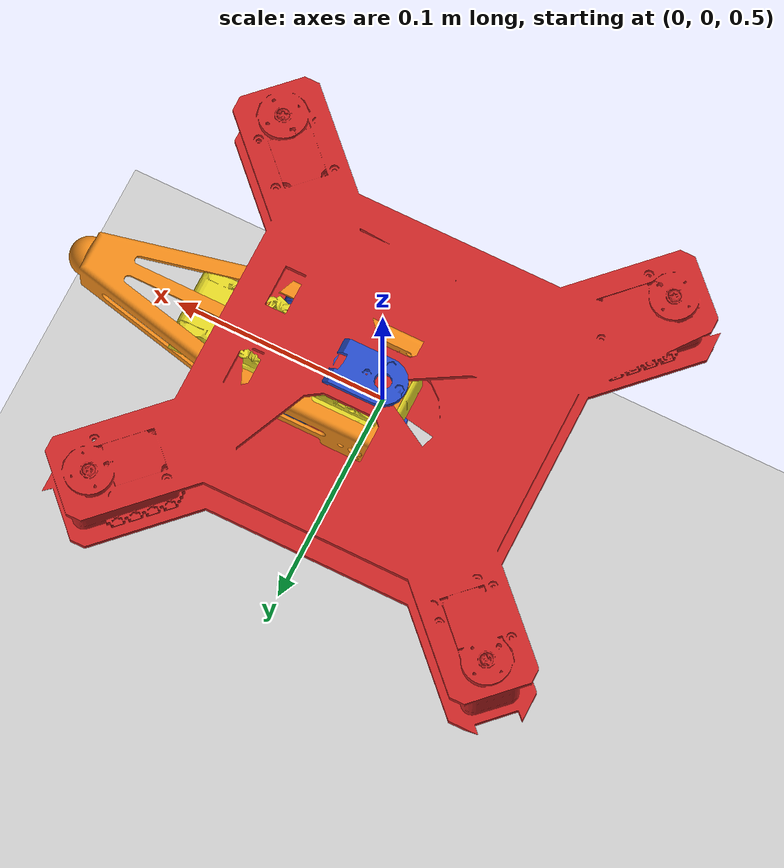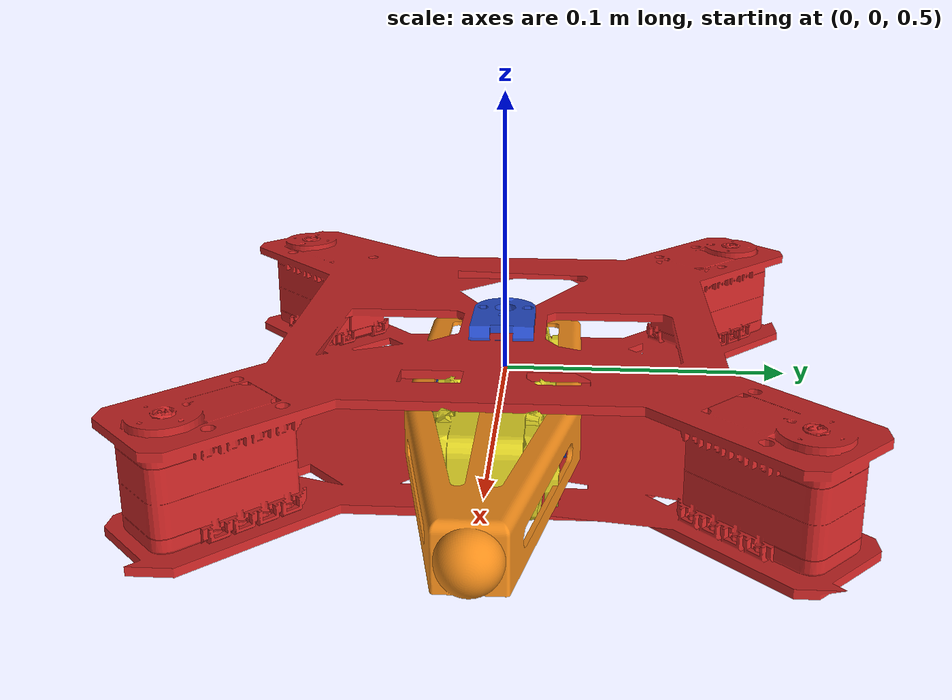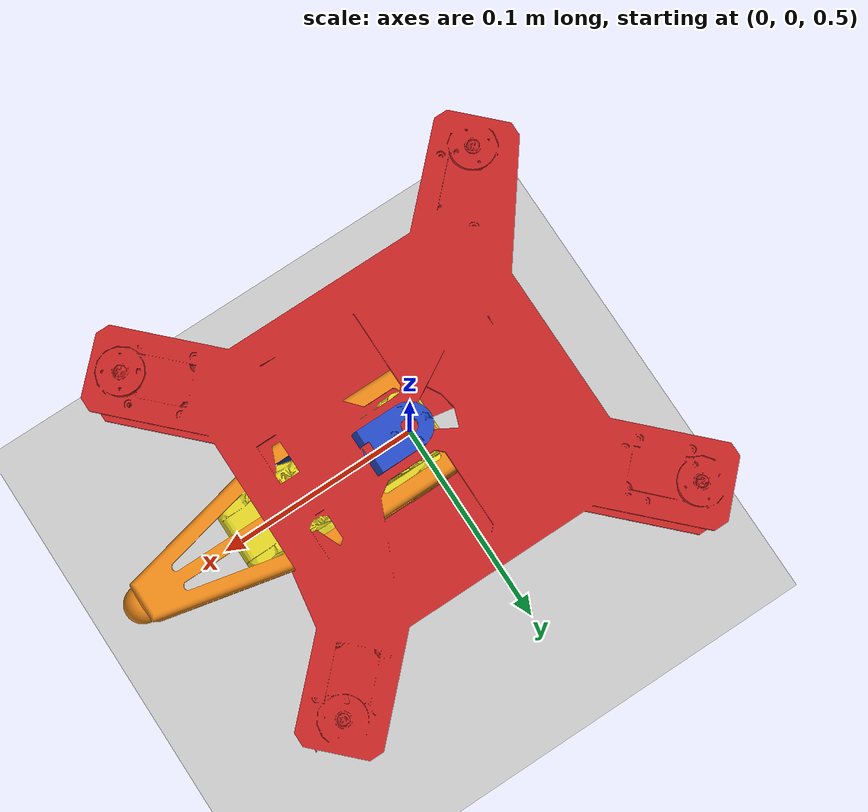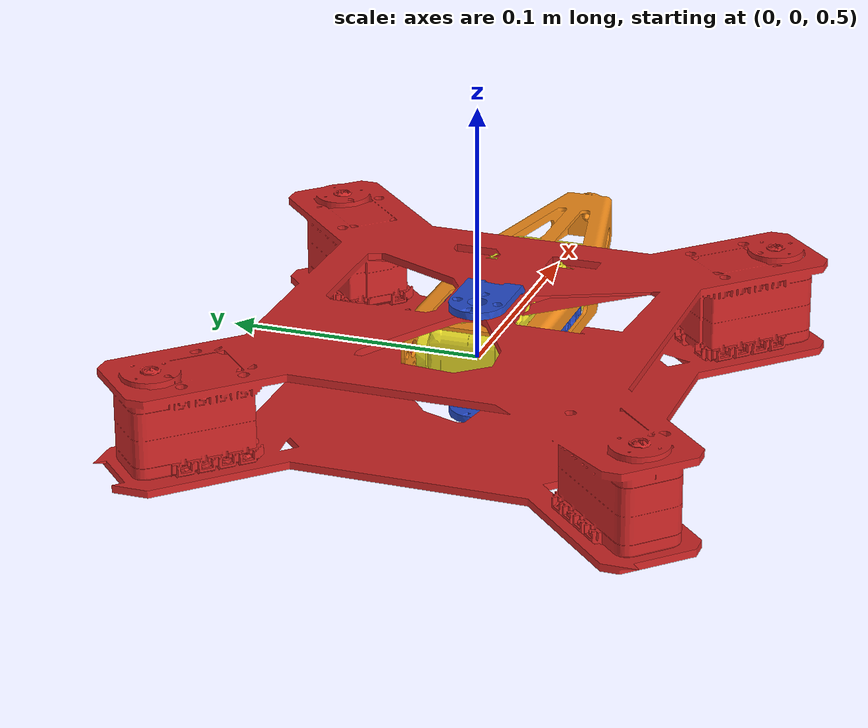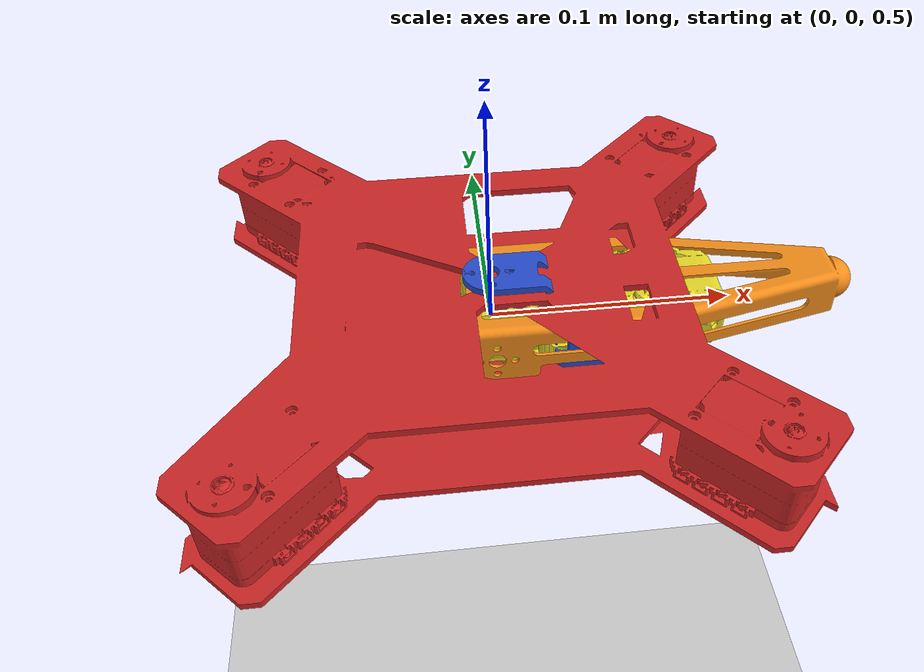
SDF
<?xml version="1.0" ?>
<sdf version="1.4">
  <world name="outdoor">

    <!-- Only one ROS interface plugin is required per world, as any other plugin can connect a Gazebo
         topic to a ROS topic (or vise versa). -->
    <plugin name="ros_interface_plugin" filename="librotors_gazebo_ros_interface_plugin.so"/>

    <physics type="ode">
      <ode>
        <solver>
          <type>quick</type>
          <iters>100</iters>
          <sor>1.0</sor>
        </solver>
        <constraints>
          <cfm>0.0</cfm>
          <erp>0.2</erp>
          <contact_max_correcting_vel>0.1</contact_max_correcting_vel>
          <contact_surface_layer>0.0</contact_surface_layer>
        </constraints>
      </ode>
      <real_time_update_rate>-1</real_time_update_rate> <!--  即模拟时间与实时的比率 -->
    </physics>
    <gravity>0 0 -9.8</gravity>

    <include>
      <uri>model://sun</uri>
    </include>

    <include>
      <uri>model://ground_plane</uri>
      <surface>
            <friction>
              <ode>
                <mu>1</mu>
                <mu2>0.9</mu2>
              </ode>
              <torsional>
                <ode/>
              </torsional>
            </friction>
            <contact>
              <ode/>
            </contact>
            <bounce/>
          </surface>
          <max_contacts>10</max_contacts>
    </include>

    <model name="usl_quadruped">
      <pose>0 0 0.5 0 0 0</pose>
      <include>
        <uri>model://usl_quadruped</uri>
        <name>usl_quadruped</name>
      </include>
    </model>

  </world>
</sdf>

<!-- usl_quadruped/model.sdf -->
<sdf version="1.5">
    <model name="usl_quadruped">

      <include>
        <uri>model://usl_quadruped_base</uri>
        <name>usl_quadruped_base</name>
        <pose>0 0 0.0 0 0 0</pose>
      </include>

      <include>
        <uri>model://usl_quadruped_coxa_l</uri>
        <name>quadruped_coxa_0 </name>
        <pose relative_to= "quadruped_coxa_0_joint" > 0 0 0 0 0 0</pose>
      </include>
      <joint name = "quadruped_coxa_0_joint" type="revolute">
        <pose relative_to= 'usl_quadruped_base::base'>0.09475 -0.09182 0.0 0.0 0.0 -0.7853981633974483</pose>
        <parent>usl_quadruped_base::base</parent>
        <child>quadruped_coxa_0::base</child>
        <axis>
          <xyz>0 0 1</xyz>
          <limit>
            <lower>-1.5707963267948966</lower>
            <upper>1.5707963267948966</upper>
          </limit>
          <dynamics>
            <spring_reference>0</spring_reference>
            <spring_stiffness>0</spring_stiffness>
          </dynamics>
        </axis>
        <physics>
          <ode>
            <limit>
              <cfm>0</cfm>
              <erp>0.2</erp>
            </limit>
          </ode>
        </physics>
      </joint>
      <plugin name = "quadruped_coxa_0_plugin" filename='librotors_gazebo_motor_model.so'>
        <robotNamespace></robotNamespace>
        <jointName>quadruped_coxa_0_joint </jointName>
        <linkName>quadruped_coxa_0::base</linkName>
        <turningDirection>cw</turningDirection>
        <motorType>position</motorType>
        <commandSubTopic>/gazebo/command/coxa_pos</commandSubTopic>
        <motorNumber>0</motorNumber>
        <motorSpeedPubTopic>coxa_pos/0</motorSpeedPubTopic>
        <joint_control_pid>
          <p>8</p>
          <i>4</i>
          <d>0.6</d>
          <iMax>10</iMax>
          <iMin>-10</iMin>
          <cmdMax>50</cmdMax>
          <cmdMin>-50</cmdMin>
        </joint_control_pid>
      </plugin>

      <include>
        <uri>model://usl_quadruped_coxa_l</uri>
        <name>quadruped_coxa_1 </name>
        <pose relative_to= "quadruped_coxa_1_joint" > 0 0 0 0 0 0</pose>
      </include>
      <joint name = "quadruped_coxa_1_joint" type="revolute">
        <pose relative_to= 'usl_quadruped_base::base'>-0.09475 -0.09182 0.0 0.0 0.0 -2.356194490192345</pose>
        <parent>usl_quadruped_base::base</parent>
        <child>quadruped_coxa_1::base</child>
        <axis>
          <xyz>0 0 1</xyz>
          <limit>
            <lower>-1.5707963267948966</lower>
            <upper>1.5707963267948966</upper>
          </limit>
          <dynamics>
            <spring_reference>0</spring_reference>
            <spring_stiffness>0</spring_stiffness>
          </dynamics>
        </axis>
        <physics>
          <ode>
            <limit>
              <cfm>0</cfm>
              <erp>0.2</erp>
            </limit>
          </ode>
        </physics>
      </joint>
      <plugin name = "quadruped_coxa_1_plugin" filename='librotors_gazebo_motor_model.so'>
        <robotNamespace></robotNamespace>
        <jointName>quadruped_coxa_1_joint </jointName>
        <linkName>quadruped_coxa_1::base</linkName>
        <turningDirection>cw</turningDirection>
        <motorType>position</motorType>
        <commandSubTopic>/gazebo/command/coxa_pos</commandSubTopic>
        <motorNumber>1</motorNumber>
        <motorSpeedPubTopic>coxa_pos/1</motorSpeedPubTopic>
        <joint_control_pid>
          <p>8</p>
          <i>4</i>
          <d>0.6</d>
          <iMax>10</iMax>
          <iMin>-10</iMin>
          <cmdMax>50</cmdMax>
          <cmdMin>-50</cmdMin>
        </joint_control_pid>
      </plugin>

      <include>
        <uri>model://usl_quadruped_coxa_l</uri>
        <name>quadruped_coxa_2 </name>
        <pose relative_to= "quadruped_coxa_2_joint" > 0 0 0 0 0 0</pose>
      </include>
      <joint name = "quadruped_coxa_2_joint" type="revolute">
        <pose relative_to= 'usl_quadruped_base::base'>-0.09475 0.09182 0.0 0.0 0.0 -3.9269908169872414</pose>
        <parent>usl_quadruped_base::base</parent>
        <child>quadruped_coxa_2::base</child>
        <axis>
          <xyz>0 0 1</xyz>
          <limit>
            <lower>-1.5707963267948966</lower>
            <upper>1.5707963267948966</upper>
          </limit>
          <dynamics>
            <spring_reference>0</spring_reference>
            <spring_stiffness>0</spring_stiffness>
          </dynamics>
        </axis>
        <physics>
          <ode>
            <limit>
              <cfm>0</cfm>
              <erp>0.2</erp>
            </limit>
          </ode>
        </physics>
      </joint>
      <plugin name = "quadruped_coxa_2_plugin" filename='librotors_gazebo_motor_model.so'>
        <robotNamespace></robotNamespace>
        <jointName>quadruped_coxa_2_joint </jointName>
        <linkName>quadruped_coxa_2::base</linkName>
        <turningDirection>cw</turningDirection>
        <motorType>position</motorType>
        <commandSubTopic>/gazebo/command/coxa_pos</commandSubTopic>
        <motorNumber>2</motorNumber>
        <motorSpeedPubTopic>coxa_pos/2</motorSpeedPubTopic>
        <joint_control_pid>
          <p>8</p>
          <i>4</i>
          <d>0.6</d>
          <iMax>10</iMax>
          <iMin>-10</iMin>
          <cmdMax>50</cmdMax>
          <cmdMin>-50</cmdMin>
        </joint_control_pid>
      </plugin>

      <include>
        <uri>model://usl_quadruped_coxa_l</uri>
        <name>quadruped_coxa_3 </name>
        <pose relative_to= "quadruped_coxa_3_joint" > 0 0 0 0 0 0</pose>
      </include>
      <joint name = "quadruped_coxa_3_joint" type="revolute">
        <pose relative_to= 'usl_quadruped_base::base'>0.09475 0.09182 0.0 0.0 0.0 -5.497787143782138</pose>
        <parent>usl_quadruped_base::base</parent>
        <child>quadruped_coxa_3::base</child>
        <axis>
          <xyz>0 0 1</xyz>
          <limit>
            <lower>-1.5707963267948966</lower>
            <upper>1.5707963267948966</upper>
          </limit>
          <dynamics>
            <spring_reference>0</spring_reference>
            <spring_stiffness>0</spring_stiffness>
          </dynamics>
        </axis>
        <physics>
          <ode>
            <limit>
              <cfm>0</cfm>
              <erp>0.2</erp>
            </limit>
          </ode>
        </physics>
      </joint>
      <plugin name = "quadruped_coxa_3_plugin" filename='librotors_gazebo_motor_model.so'>
        <robotNamespace></robotNamespace>
        <jointName>quadruped_coxa_3_joint </jointName>
        <linkName>quadruped_coxa_3::base</linkName>
        <turningDirection>cw</turningDirection>
        <motorType>position</motorType>
        <commandSubTopic>/gazebo/command/coxa_pos</commandSubTopic>
        <motorNumber>3</motorNumber>
        <motorSpeedPubTopic>coxa_pos/3</motorSpeedPubTopic>
        <joint_control_pid>
          <p>8</p>
          <i>4</i>
          <d>0.6</d>
          <iMax>10</iMax>
          <iMin>-10</iMin>
          <cmdMax>50</cmdMax>
          <cmdMin>-50</cmdMin>
        </joint_control_pid>
      </plugin>

    <include>
      <uri>model://usl_quadruped_femur_l</uri>
      <name>quadruped_femur_0</name>
      <pose relative_to= "quadruped_femur_0_joint" > 0 0 0 0 0 0</pose>
    </include>
    <joint name = "quadruped_femur_0_joint" type="revolute">
      <pose relative_to= "quadruped_coxa_0::base" > 0.04802 0.0 0.0 0.0 0.0 0</pose>
      <parent>quadruped_coxa_0::base</parent>
      <child>quadruped_femur_0::base</child>
      <axis>
        <xyz>0 1 0</xyz>
        <limit>
          <lower>-1.5707963267948966</lower>
          <upper>1.5707963267948966</upper>
        </limit>
        <dynamics>
          <spring_stiffness>0</spring_stiffness>
          <spring_reference>0</spring_reference>
        </dynamics>
      </axis>
      <physics>
        <ode>
          <limit>
            <cfm>0</cfm>
            <erp>0.2</erp>
          </limit>
        </ode>
      </physics>
    </joint>
    <plugin name = "quadruped_femur_0_plugin" filename='librotors_gazebo_motor_model.so'>
      <robotNamespace></robotNamespace>
      <jointName>quadruped_femur_0_joint </jointName>
      <linkName>quadruped_femur_0::base</linkName>
      <turningDirection>cw</turningDirection>
      <motorType>position</motorType>
      <commandSubTopic>/gazebo/command/femur_pos</commandSubTopic>
      <motorNumber>0</motorNumber>
      <motorSpeedPubTopic>femur_pos/0</motorSpeedPubTopic>
      <joint_control_pid>
        <p>8</p>
        <i>4</i>
        <d>0.6</d>
        <iMax>10</iMax>
        <iMin>-10</iMin>
        <cmdMax>50</cmdMax>
        <cmdMin>-50</cmdMin>
      </joint_control_pid>
    </plugin>

    <include>
      <uri>model://usl_quadruped_femur_l</uri>
      <name>quadruped_femur_1</name>
      <pose relative_to= "quadruped_femur_1_joint" > 0 0 0 0 0 0</pose>
    </include>
    <joint name = "quadruped_femur_1_joint" type="revolute">
      <pose relative_to= "quadruped_coxa_1::base" > 0.04802 0.0 0.0 0.0 0.0 0</pose>
      <parent>quadruped_coxa_1::base</parent>
      <child>quadruped_femur_1::base</child>
      <axis>
        <xyz>0 1 0</xyz>
        <limit>
          <lower>-1.5707963267948966</lower>
          <upper>1.5707963267948966</upper>
        </limit>
        <dynamics>
          <spring_stiffness>0</spring_stiffness>
          <spring_reference>0</spring_reference>
        </dynamics>
      </axis>
      <physics>
        <ode>
          <limit>
            <cfm>0</cfm>
            <erp>0.2</erp>
          </limit>
        </ode>
      </physics>
    </joint>
    <plugin name = "quadruped_femur_1_plugin" filename='librotors_gazebo_motor_model.so'>
      <robotNamespace></robotNamespace>
      <jointName>quadruped_femur_1_joint </jointName>
      <linkName>quadruped_femur_1::base</linkName>
      <turningDirection>cw</turningDirection>
      <motorType>position</motorType>
      <commandSubTopic>/gazebo/command/femur_pos</commandSubTopic>
      <motorNumber>1</motorNumber>
      <motorSpeedPubTopic>femur_pos/1</motorSpeedPubTopic>
      <joint_control_pid>
        <p>8</p>
        <i>4</i>
        <d>0.6</d>
        <iMax>10</iMax>
        <iMin>-10</iMin>
        <cmdMax>50</cmdMax>
        <cmdMin>-50</cmdMin>
      </joint_control_pid>
    </plugin>

    <include>
      <uri>model://usl_quadruped_femur_l</uri>
      <name>quadruped_femur_2</name>
      <pose relative_to= "quadruped_femur_2_joint" > 0 0 0 0 0 0</pose>
    </include>
    <joint name = "quadruped_femur_2_joint" type="revolute">
      <pose relative_to= "quadruped_coxa_2::base" > 0.04802 0.0 0.0 0.0 0.0 0</pose>
      <parent>quadruped_coxa_2::base</parent>
      <child>quadruped_femur_2::base</child>
      <axis>
        <xyz>0 1 0</xyz>
        <limit>
          <lower>-1.5707963267948966</lower>
          <upper>1.5707963267948966</upper>
        </limit>
        <dynamics>
          <spring_stiffness>0</spring_stiffness>
          <spring_reference>0</spring_reference>
        </dynamics>
      </axis>
      <physics>
        <ode>
          <limit>
            <cfm>0</cfm>
            <erp>0.2</erp>
          </limit>
        </ode>
      </physics>
    </joint>
    <plugin name = "quadruped_femur_2_plugin" filename='librotors_gazebo_motor_model.so'>
      <robotNamespace></robotNamespace>
      <jointName>quadruped_femur_2_joint </jointName>
      <linkName>quadruped_femur_2::base</linkName>
      <turningDirection>cw</turningDirection>
      <motorType>position</motorType>
      <commandSubTopic>/gazebo/command/femur_pos</commandSubTopic>
      <motorNumber>2</motorNumber>
      <motorSpeedPubTopic>femur_pos/2</motorSpeedPubTopic>
      <joint_control_pid>
        <p>8</p>
        <i>4</i>
        <d>0.6</d>
        <iMax>10</iMax>
        <iMin>-10</iMin>
        <cmdMax>50</cmdMax>
        <cmdMin>-50</cmdMin>
      </joint_control_pid>
    </plugin>

    <include>
      <uri>model://usl_quadruped_femur_l</uri>
      <name>quadruped_femur_3</name>
      <pose relative_to= "quadruped_femur_3_joint" > 0 0 0 0 0 0</pose>
    </include>
    <joint name = "quadruped_femur_3_joint" type="revolute">
      <pose relative_to= "quadruped_coxa_3::base" > 0.04802 0.0 0.0 0.0 0.0 0</pose>
      <parent>quadruped_coxa_3::base</parent>
      <child>quadruped_femur_3::base</child>
      <axis>
        <xyz>0 1 0</xyz>
        <limit>
          <lower>-1.5707963267948966</lower>
          <upper>1.5707963267948966</upper>
        </limit>
        <dynamics>
          <spring_stiffness>0</spring_stiffness>
          <spring_reference>0</spring_reference>
        </dynamics>
      </axis>
      <physics>
        <ode>
          <limit>
            <cfm>0</cfm>
            <erp>0.2</erp>
          </limit>
        </ode>
      </physics>
    </joint>
    <plugin name = "quadruped_femur_3_plugin" filename='librotors_gazebo_motor_model.so'>
      <robotNamespace></robotNamespace>
      <jointName>quadruped_femur_3_joint </jointName>
      <linkName>quadruped_femur_3::base</linkName>
      <turningDirection>cw</turningDirection>
      <motorType>position</motorType>
      <commandSubTopic>/gazebo/command/femur_pos</commandSubTopic>
      <motorNumber>3</motorNumber>
      <motorSpeedPubTopic>femur_pos/3</motorSpeedPubTopic>
      <joint_control_pid>
        <p>8</p>
        <i>4</i>
        <d>0.6</d>
        <iMax>10</iMax>
        <iMin>-10</iMin>
        <cmdMax>50</cmdMax>
        <cmdMin>-50</cmdMin>
      </joint_control_pid>
    </plugin>

  <include>
    <uri>model://usl_quadruped_tibia_l</uri>
    <name>quadruped_tibia_0</name>
    <pose relative_to= "quadruped_tibia_0_joint" > 0 0 0 0 0 0</pose>
  </include>
  <joint name = "quadruped_tibia_0_joint" type="revolute">
    <pose relative_to= "quadruped_femur_0::base" >0.083 0.0 0.0 0.0 1.5184364492350666 0</pose>
    <parent>quadruped_femur_0::base</parent>
    <child>quadruped_tibia_0::base</child>
    <axis>
      <xyz>0 1 0</xyz>
      <limit>
        <lower>-3.141592653589793</lower>
        <upper>3.141592653589793</upper>
        <effort>500</effort>
        <velocity>2</velocity>
      </limit>
      <dynamics>
        <spring_stiffness>0</spring_stiffness>
        <spring_reference>0</spring_reference>
      </dynamics>
    </axis>
    <physics>
      <ode>
        <limit>
          <cfm>0</cfm>
          <erp>0.2</erp>
        </limit>
      </ode>
    </physics>
  </joint>
  <plugin name = "quadruped_tibia_0_plugin" filename='librotors_gazebo_motor_model.so'>
    <robotNamespace></robotNamespace>
    <jointName>quadruped_tibia_0_joint</jointName>
    <linkName>quadruped_tibia_0::base</linkName>
    <turningDirection>cw</turningDirection>
    <motorType>position</motorType>
    <commandSubTopic>/gazebo/command/tibia_pos</commandSubTopic>
    <motorNumber>0</motorNumber>
    <motorSpeedPubTopic>tibia_pos/0</motorSpeedPubTopic>
    <joint_control_pid>
      <p>8</p>
      <i>4</i>
      <d>0.6</d>
      <iMax>10</iMax>
      <iMin>-10</iMin>
      <cmdMax>50</cmdMax>
      <cmdMin>-50</cmdMin>
    </joint_control_pid>
  </plugin>

  <include>
    <uri>model://usl_quadruped_tibia_l</uri>
    <name>quadruped_tibia_1</name>
    <pose relative_to= "quadruped_tibia_1_joint" > 0 0 0 0 0 0</pose>
  </include>
  <joint name = "quadruped_tibia_1_joint" type="revolute">
    <pose relative_to= "quadruped_femur_1::base" >0.083 0.0 0.0 0.0 1.5184364492350666 0</pose>
    <parent>quadruped_femur_1::base</parent>
    <child>quadruped_tibia_1::base</child>
    <axis>
      <xyz>0 1 0</xyz>
      <limit>
        <lower>-3.141592653589793</lower>
        <upper>3.141592653589793</upper>
        <effort>500</effort>
        <velocity>2</velocity>
      </limit>
      <dynamics>
        <spring_stiffness>0</spring_stiffness>
        <spring_reference>0</spring_reference>
      </dynamics>
    </axis>
    <physics>
      <ode>
        <limit>
          <cfm>0</cfm>
          <erp>0.2</erp>
        </limit>
      </ode>
    </physics>
  </joint>
  <plugin name = "quadruped_tibia_1_plugin" filename='librotors_gazebo_motor_model.so'>
    <robotNamespace></robotNamespace>
    <jointName>quadruped_tibia_1_joint</jointName>
    <linkName>quadruped_tibia_1::base</linkName>
    <turningDirection>cw</turningDirection>
    <motorType>position</motorType>
    <commandSubTopic>/gazebo/command/tibia_pos</commandSubTopic>
    <motorNumber>1</motorNumber>
    <motorSpeedPubTopic>tibia_pos/1</motorSpeedPubTopic>
    <joint_control_pid>
      <p>8</p>
      <i>4</i>
      <d>0.6</d>
      <iMax>10</iMax>
      <iMin>-10</iMin>
      <cmdMax>50</cmdMax>
      <cmdMin>-50</cmdMin>
    </joint_control_pid>
  </plugin>

  <include>
    <uri>model://usl_quadruped_tibia_l</uri>
    <name>quadruped_tibia_2</name>
    <pose relative_to= "quadruped_tibia_2_joint" > 0 0 0 0 0 0</pose>
  </include>
  <joint name = "quadruped_tibia_2_joint" type="revolute">
    <pose relative_to= "quadruped_femur_2::base" >0.083 0.0 0.0 0.0 1.5184364492350666 0</pose>
    <parent>quadruped_femur_2::base</parent>
    <child>quadruped_tibia_2::base</child>
    <axis>
      <xyz>0 1 0</xyz>
      <limit>
        <lower>-3.141592653589793</lower>
        <upper>3.141592653589793</upper>
        <effort>500</effort>
        <velocity>2</velocity>
      </limit>
      <dynamics>
        <spring_stiffness>0</spring_stiffness>
        <spring_reference>0</spring_reference>
      </dynamics>
    </axis>
    <physics>
      <ode>
        <limit>
          <cfm>0</cfm>
          <erp>0.2</erp>
        </limit>
      </ode>
    </physics>
  </joint>
  <plugin name = "quadruped_tibia_2_plugin" filename='librotors_gazebo_motor_model.so'>
    <robotNamespace></robotNamespace>
    <jointName>quadruped_tibia_2_joint</jointName>
    <linkName>quadruped_tibia_2::base</linkName>
    <turningDirection>cw</turningDirection>
    <motorType>position</motorType>
    <commandSubTopic>/gazebo/command/tibia_pos</commandSubTopic>
    <motorNumber>2</motorNumber>
    <motorSpeedPubTopic>tibia_pos/2</motorSpeedPubTopic>
    <joint_control_pid>
      <p>8</p>
      <i>4</i>
      <d>0.6</d>
      <iMax>10</iMax>
      <iMin>-10</iMin>
      <cmdMax>50</cmdMax>
      <cmdMin>-50</cmdMin>
    </joint_control_pid>
  </plugin>

  <include>
    <uri>model://usl_quadruped_tibia_l</uri>
    <name>quadruped_tibia_3</name>
    <pose relative_to= "quadruped_tibia_3_joint" > 0 0 0 0 0 0</pose>
  </include>
  <joint name = "quadruped_tibia_3_joint" type="revolute">
    <pose relative_to= "quadruped_femur_3::base" >0.083 0.0 0.0 0.0 1.5184364492350666 0</pose>
    <parent>quadruped_femur_3::base</parent>
    <child>quadruped_tibia_3::base</child>
    <axis>
      <xyz>0 1 0</xyz>
      <limit>
        <lower>-3.141592653589793</lower>
        <upper>3.141592653589793</upper>
        <effort>500</effort>
        <velocity>2</velocity>
      </limit>
      <dynamics>
        <spring_stiffness>0</spring_stiffness>
        <spring_reference>0</spring_reference>
      </dynamics>
    </axis>
    <physics>
      <ode>
        <limit>
          <cfm>0</cfm>
          <erp>0.2</erp>
        </limit>
      </ode>
    </physics>
  </joint>
  <plugin name = "quadruped_tibia_3_plugin" filename='librotors_gazebo_motor_model.so'>
    <robotNamespace></robotNamespace>
    <jointName>quadruped_tibia_3_joint</jointName>
    <linkName>quadruped_tibia_3::base</linkName>
    <turningDirection>cw</turningDirection>
    <motorType>position</motorType>
    <commandSubTopic>/gazebo/command/tibia_pos</commandSubTopic>
    <motorNumber>3</motorNumber>
    <motorSpeedPubTopic>tibia_pos/3</motorSpeedPubTopic>
    <joint_control_pid>
      <p>8</p>
      <i>4</i>
      <d>0.6</d>
      <iMax>10</iMax>
      <iMin>-10</iMin>
      <cmdMax>50</cmdMax>
      <cmdMin>-50</cmdMin>
    </joint_control_pid>
  </plugin>

<plugin name="ArduRotorQuadruped" filename="libArduRotorQuadruped.so">
  <fdm_addr>127.0.0.1</fdm_addr>
  <fdm_port_in>9002</fdm_port_in>
  <fdm_port_out>9003</fdm_port_out>
  <modelXYZToAirplaneXForwardZDown>0 0 0 3.141593 0 0</modelXYZToAirplaneXForwardZDown>
  <gazeboXYZToNED>0 0 0 3.141593 0 0</gazeboXYZToNED>
  <motor_num>4</motor_num>
  <coxa_num>4</coxa_num>
  <femur_num>4</femur_num>
  <tibia_num>4</tibia_num>

  <coxa_pub>/gazebo/command/coxa_pos</coxa_pub>
  <femur_pub>/gazebo/command/femur_pos</femur_pub>
  <tibia_pub>/gazebo/command/tibia_pos</tibia_pub>
  <imuName>usl_quadruped_base::imu_link::imu_sensor</imuName>
  <connectionTimeoutMaxCount>5</connectionTimeoutMaxCount>
</plugin>
</model>
</sdf>

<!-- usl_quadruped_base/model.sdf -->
<sdf version="1.5">
    <model name="usl_quadruped_base">
      <link name="base">
      <pose>0 0 0 0 0 0</pose>
      <inertial>
        <pose>0 0 0 0 0 0</pose>
        <mass>0.5</mass>
        <inertia>
          <ixx>0.2</ixx>
          <iyy>0.2</iyy>
          <izz>0.2</izz>
          <ixy>0</ixy>
          <ixz>0</ixz>
          <iyz>0</iyz>
        </inertia>
      </inertial>
      <collision name="base_collision">
        <pose>0 0 0  0 0 0</pose>
        <geometry>
          <mesh>
            <uri>model://usl_quadruped_base/meshes/usl_quadruped_base.dae</uri>
          </mesh>
        </geometry>
        <surface>
          <contact>
            <ode/>
          </contact>
          <friction>
            <ode/>
          </friction>
        </surface>
      </collision>
      <visual name="base_visual">
        <geometry>
          <mesh>
            <uri>model://usl_quadruped_base/meshes/usl_quadruped_base.dae</uri>
          </mesh>
        </geometry>
        <material>
          <script>
            <name>Gazebo/Red</name>
          </script>
        </material>
      </visual>
    </link>
    <link name='imu_link'>
    <inertial>
      <pose>0 0 0 0 0 0</pose>
      <mass>0.15</mass>
      <inertia>
        <ixx>0.00001</ixx>
        <ixy>0</ixy>
        <ixz>0</ixz>
        <iyy>0.00002</iyy>
        <iyz>0</iyz>
        <izz>0.00002</izz>
      </inertia>
    </inertial>
    <sensor name="imu_sensor" type="imu">
      <pose>0 0 0 3.141593 0 0</pose>
      <always_on>1</always_on>
      <update_rate>1000.0</update_rate>
      <topic>__default_topic__</topic>
    </sensor>
  </link>
  <joint name='imu_joint' type='revolute'>
    <child>imu_link</child>
    <parent>base</parent>
    <axis>
      <xyz>0 0 1</xyz>
      <limit>
        <lower>-0.0001</lower>
        <upper>0.00001</upper>
        <effort>0</effort>
        <velocity>0</velocity>
      </limit>
      <dynamics>
        <damping>1.0</damping>
      </dynamics>
      <use_parent_model_frame>1</use_parent_model_frame>
    </axis>
    <physics>
      <ode>
        <implicit_spring_damper>1</implicit_spring_damper>
      </ode>
    </physics>
  </joint>

</model>
</sdf>

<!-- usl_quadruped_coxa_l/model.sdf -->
<sdf version="1.5">
    <model name="usl_quadruped_coxa_l">
      <link name="base">
      <pose>0 0 0.0  0 0 0</pose>
      <inertial>
        <pose>0 0 0 0 0 0</pose>
        <mass>0.1</mass>
        <inertia>
          <ixx>0.001</ixx>
          <iyy>0.001</iyy>
          <izz>0.001</izz>
          <ixy>0</ixy>
          <ixz>0</ixz>
          <iyz>0</iyz>
        </inertia>
      </inertial>
      <collision name="usl_quadruped_coxa_l_collision">
        <pose>0 0 0  0 0 0</pose>
        <geometry>
          <box>
            <size>0.01 0.01 0.01</size>
          </box>
        </geometry>
        <surface>
          <friction>
            <ode>
              <mu2>1</mu2>
              <fdir1>1 0 0</fdir1>
              <mu1>1.0</mu1>
            </ode>
          </friction>
          <contact>
            <ode>
              <kp>1e+15</kp>
              <kd>1e+13</kd>
            </ode>
          </contact>
        </surface>
      </collision>
      <visual name="base_visual">
        <geometry>
          <mesh>
            <uri>model://usl_quadruped_coxa_l/meshes/usl_quadruped_coxa_l.dae</uri>
          </mesh>
        </geometry>
        <material>
          <script>
            <name>Gazebo/Blue</name>
          </script>
        </material>
      </visual>
    </link>

</model>
</sdf>

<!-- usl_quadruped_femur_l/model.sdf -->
<sdf version="1.5">
    <model name="usl_quadruped_femur_l">
      <link name="base">
      <pose>0 0 0.0  0 0 0</pose>
      <inertial>
        <pose>0 0 0 0 0 0</pose>
        <mass>0.1</mass>
        <inertia>
          <ixx>0.001</ixx>
          <iyy>0.001</iyy>
          <izz>0.001</izz>
          <ixy>0</ixy>
          <ixz>0</ixz>
          <iyz>0</iyz>
        </inertia>
      </inertial>
      <collision name="base_collision">
        <pose>0 0 0  0 0 0</pose>
        <geometry>
          <box>
            <size>0.01 0.01 0.01</size>
          </box>
        </geometry>
        <surface>
          <friction>
            <ode>
              <mu2>1</mu2>
              <fdir1>1 0 0</fdir1>
              <mu1>1.0</mu1>
            </ode>
          </friction>
          <contact>
            <ode>
              <kp>1e+15</kp>
              <kd>1e+13</kd>
            </ode>
          </contact>
        </surface>
      </collision>
      <visual name="base_visual">
        <geometry>
          <mesh>
            <uri>model://usl_quadruped_femur_l/meshes/usl_quadruped_femur_l.dae</uri>
          </mesh>
        </geometry>
        <material>
          <script>
            <name>Gazebo/Yellow</name>
          </script>
        </material>
      </visual>
    </link>

</model>
</sdf>

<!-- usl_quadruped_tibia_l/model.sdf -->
<sdf version="1.5">
    <model name="usl_quadruped_tibia_l">
      <link name="base">
      <pose>0 0 0.0  0 0 0</pose>
      <inertial>
        <pose>0 0 0 0 0 0</pose>
        <mass>0.1</mass>
        <inertia>
          <ixx>0.001</ixx>
          <iyy>0.001</iyy>
          <izz>0.001</izz>
          <ixy>0</ixy>
          <ixz>0</ixz>
          <iyz>0</iyz>
        </inertia>
      </inertial>
      <collision name="base_collision">
        <pose>0 0 0  0 0 0</pose>
        <geometry>
          <mesh>
            <uri>model://usl_quadruped_tibia_l/meshes/tibia.dae</uri>
          </mesh>
        </geometry>
        <surface>
          <friction>
            <ode>
              <mu2>1</mu2>
              <fdir1>1 0 0</fdir1>
              <mu1>1.0</mu1>
            </ode>
          </friction>
          <contact>
            <ode/>
          </contact>
        </surface>
      </collision>
      <visual name="base_visual">
        <geometry>
          <mesh>
            <uri>model://usl_quadruped_tibia_l/meshes/tibia.dae</uri>
          </mesh>
        </geometry>
        <material>
          <script>
            <name>Gazebo/Orange</name>
          </script>
        </material>
      </visual>
    </link>

</model>
</sdf>
